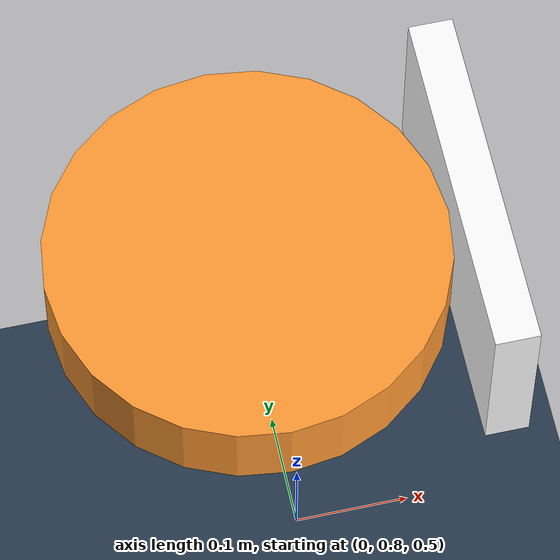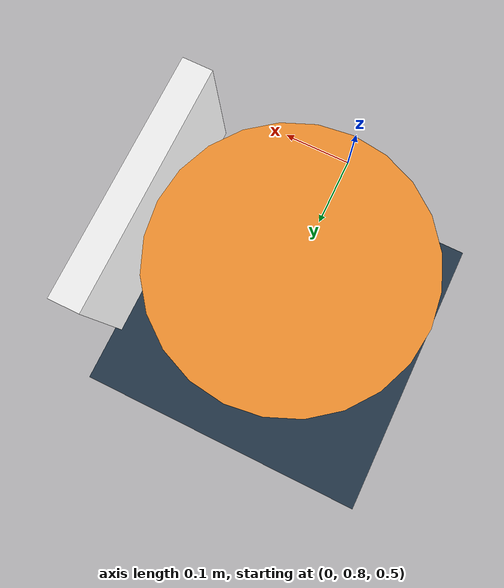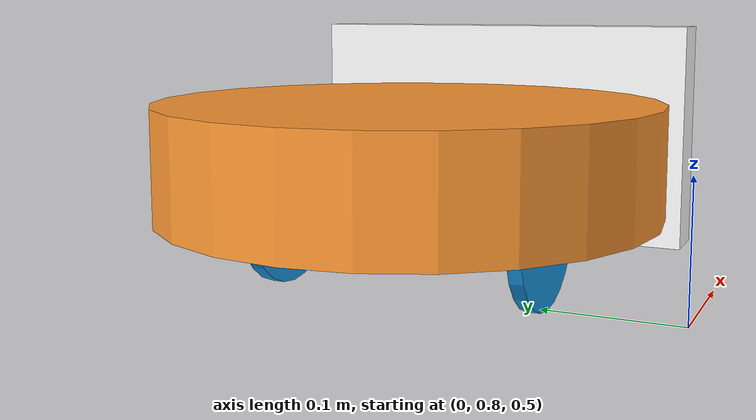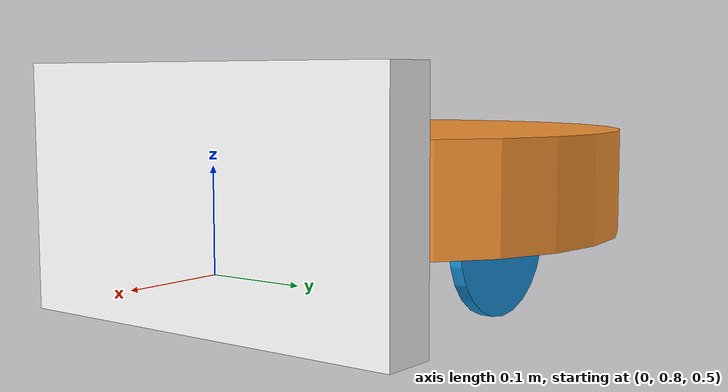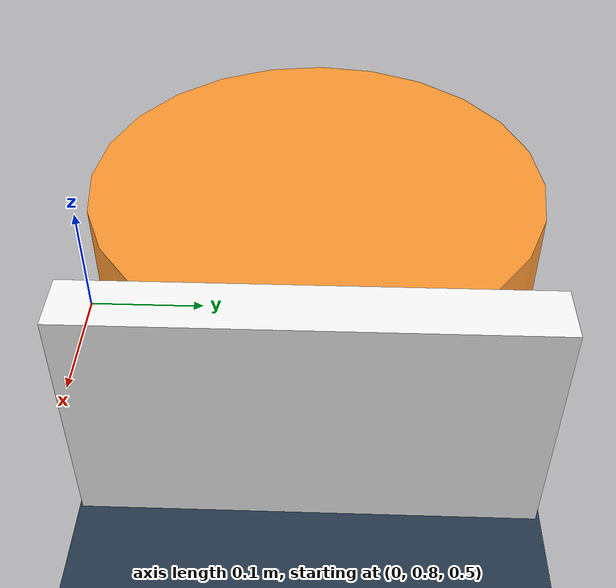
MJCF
<mujoco model="pusher2">
  <include file="scene.xml"/>

  <worldbody>

    <body name="robot_0" pos="0.0 1.0 0.5">
      <freejoint name="root_free_0"/>

      <!-- base -->
      <geom name="base_0"
              type="cylinder"
              pos="0 0 0.10"
              size="0.18 0.04"
              rgba="1.0 0.6 0.2 1"/>

      <body name="pusher1" pos="0.20 0 0.1">
          <geom type="box" size="0.02 0.16 0.09" rgba="1 1 1 1" />
      </body>

      <!-- left wheel-->
      <body name="left_wheel_0" pos="0 0.1 0.06" quat="0.707388 -0.706825 0 0">
          <joint name="left_hinge_0" type="hinge" axis="0 0 1" damping="0.02"/>
          <geom  name="left_geom_0" type="cylinder" size="0.06 0.005" rgba="0.1 0.6 0.9 1"/>
      </body>

      <!-- right wheel -->
      <body name="right_wheel_0" pos="0 -0.1 0.06" quat="0.707388 -0.706825 0 0">
          <joint name="right_hinge_0" type="hinge" axis="0 0 1" damping="0.02"/>
          <geom  name="right_geom_0"  type="cylinder" size="0.06 0.005" rgba="0.1 0.6 0.9 1"/>
      </body>

    </body>

  </worldbody>

  <tendon>
  <fixed name="forward">
    <joint joint="left_hinge_0" coef=".5"/>
    <joint joint="right_hinge_0" coef=".5"/>
  </fixed>
  <fixed name="turn">
    <joint joint="left_hinge_0" coef="-.5"/>
    <joint joint="right_hinge_0" coef=".5"/>
  </fixed>
</tendon>

<actuator>
  <motor name="forward" tendon="forward" ctrlrange="-1. 1."/>
  <motor name="turn" tendon="turn" ctrlrange="-1. 1."/>
</actuator>

<sensor>
    <jointactuatorfrc name="right" joint="right_hinge_0"/>
    <jointactuatorfrc name="left" joint="left_hinge_0"/>
  </sensor>

</mujoco>

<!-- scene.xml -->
<mujoco>
  <compiler meshdir="asset" texturedir="asset"/>

  <statistic meansize=".05"/>

  <visual>
    <rgba haze="0.15 0.25 0.35 1"/>
    <quality shadowsize="4096"/>
    <map stiffness="700" shadowscale="0.5" fogstart="1" fogend="15" zfar="40" haze="1"/>
  </visual>

  <asset>
    <texture type="skybox" builtin="gradient" rgb1="0.3 0.5 0.7" rgb2="0 0 0" width="512" height="512"/>
    <texture name="texplane" type="2d" builtin="checker" rgb1=".2 .3 .4" rgb2=".1 0.15 0.2"
      width="512" height="512" mark="cross" markrgb=".8 .8 .8"/>

    <material name="matplane" reflectance="0.3" texture="texplane" texrepeat="10 10" texuniform="true"/>
  </asset>

  <worldbody>
    <light diffuse=".4 .4 .4" specular="0.1 0.1 0.1" pos="0 0 2.0" dir="0 0 -1" castshadow="false"/>
    <light directional="true" diffuse=".8 .8 .8" specular="0.2 0.2 0.2" pos="0 0 4" dir="0 0 -1"/>

    <geom name="ground" type="plane" size="5 5 1" pos="0 0 0" quat="1 0 0 0" material="matplane" condim="1"/>

    <camera name="topdown" pos="0 0 2.5" quat="1 0 0 0"/>

  </worldbody>
</mujoco>
